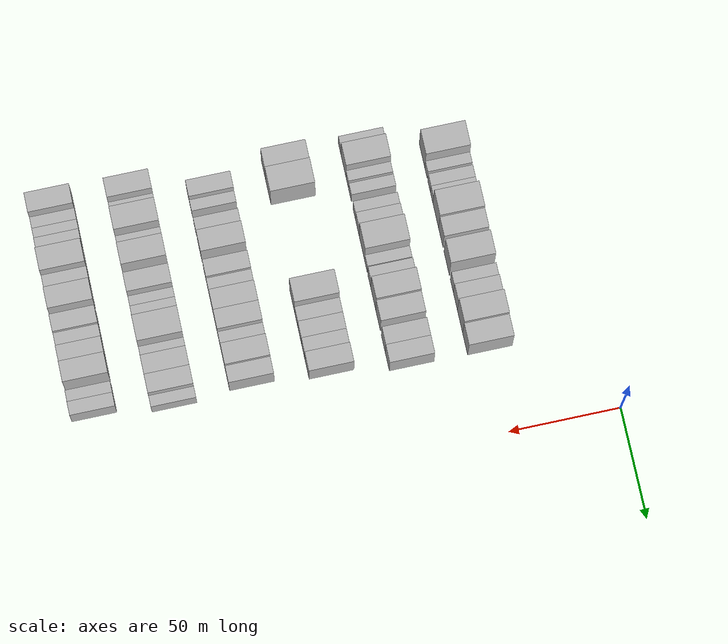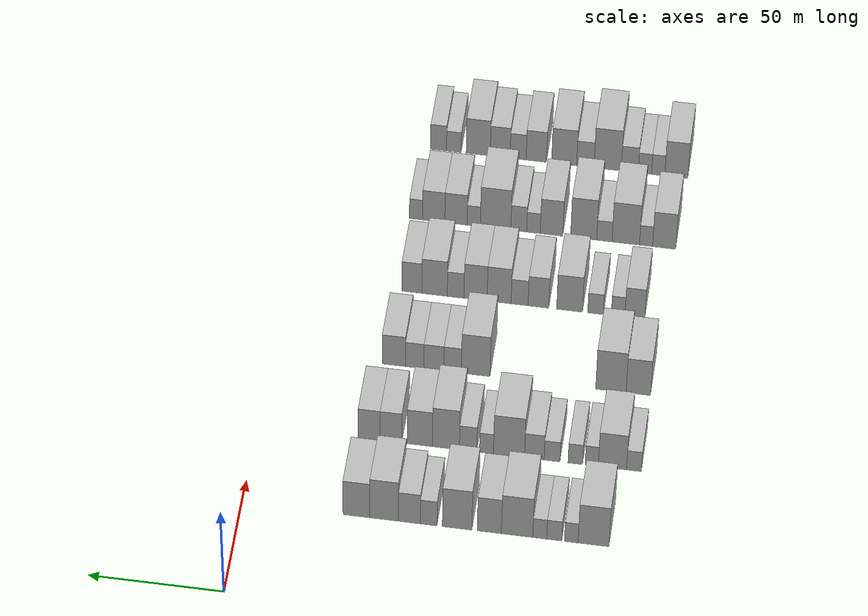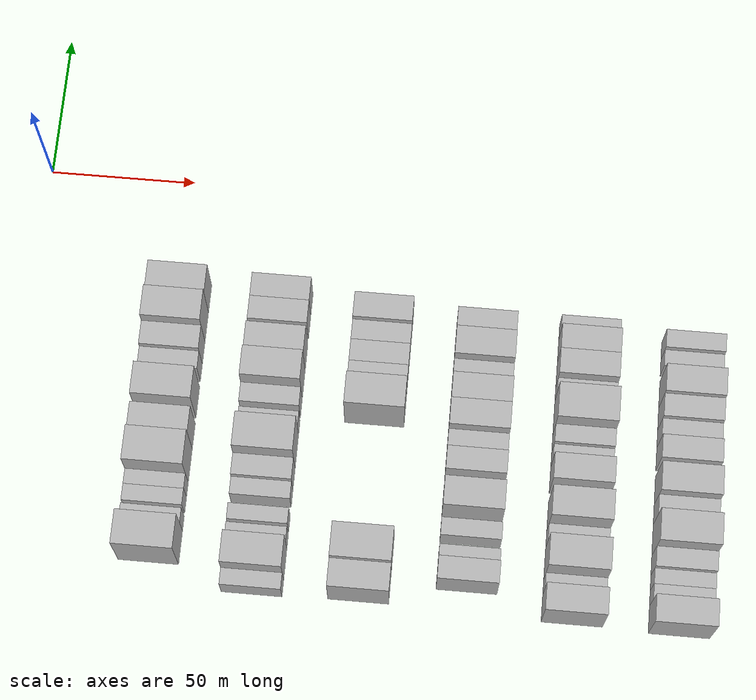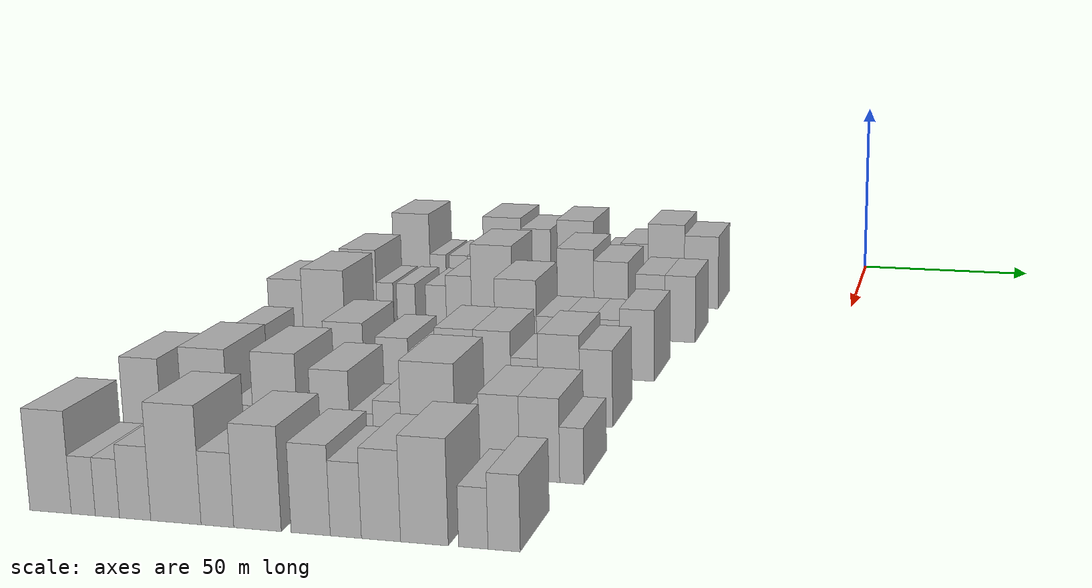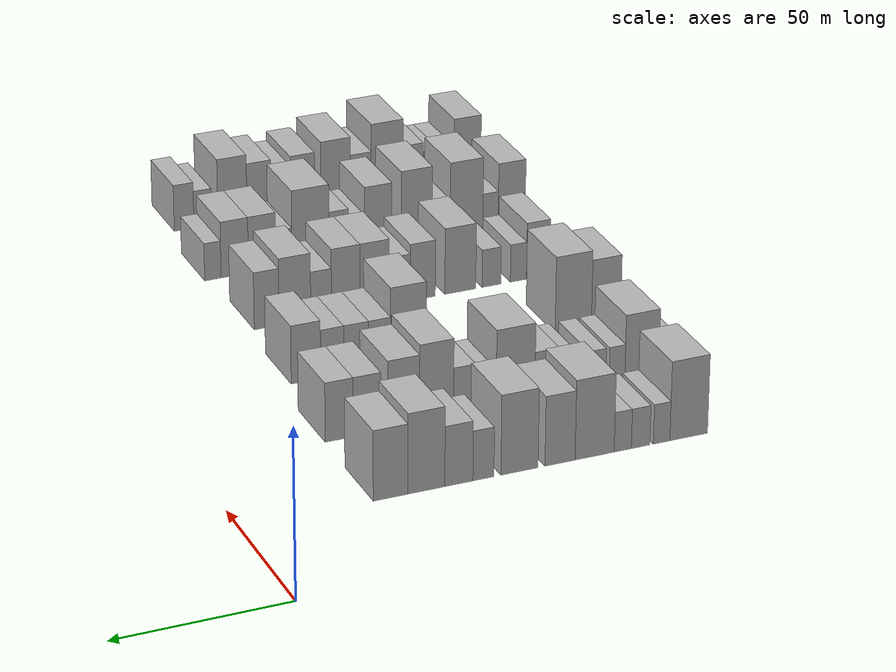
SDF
<sdf version="1.6">
 <world name="default">
  <model name="building_39">
   <static>1</static>
   <pose>50.0000 -129.4101 0 0.000000 0.000000 0.000000</pose>
   <link name="link">
    <pose>0 0 12.00 0 0 0</pose>
    <collision name="collision"><geometry><box><size>20.0000 11.3293 24.0000</size></box></geometry></collision>
    <visual name="visual">
     <cast_shadows>0</cast_shadows>
     <geometry><box><size>20.0000 11.3293 24.0000</size></box></geometry>
     <material>
      <script>
       <uri>model://HANNAS_wall/materials/scripts</uri>
       <uri>model://HANNAS_wall/materials/textures</uri>
       <name>vrc/HANNAS_wall</name>
      </script>
     </material>
    </visual>
   </link>
  </model>
  <model name="building_40">
   <static>1</static>
   <pose>50.0000 -121.2722 0 0.000000 0.000000 0.000000</pose>
   <link name="link">
    <pose>0 0 6.00 0 0 0</pose>
    <collision name="collision"><geometry><box><size>20.0000 4.9465 12.0000</size></box></geometry></collision>
    <visual name="visual">
     <cast_shadows>0</cast_shadows>
     <geometry><box><size>20.0000 4.9465 12.0000</size></box></geometry>
     <material>
      <script>
       <uri>model://HANNAS_wall/materials/scripts</uri>
       <uri>model://HANNAS_wall/materials/textures</uri>
       <name>vrc/HANNAS_wall</name>
      </script>
     </material>
    </visual>
   </link>
  </model>
  <model name="building_41">
   <static>1</static>
   <pose>50.0000 -115.0276 0 0.000000 0.000000 0.000000</pose>
   <link name="link">
    <pose>0 0 6.00 0 0 0</pose>
    <collision name="collision"><geometry><box><size>20.0000 5.5428 12.0000</size></box></geometry></collision>
    <visual name="visual">
     <cast_shadows>0</cast_shadows>
     <geometry><box><size>20.0000 5.5428 12.0000</size></box></geometry>
     <material>
      <script>
       <uri>model://HANNAS_wall/materials/scripts</uri>
       <uri>model://HANNAS_wall/materials/textures</uri>
       <name>vrc/HANNAS_wall</name>
      </script>
     </material>
    </visual>
   </link>
  </model>
  <model name="building_42">
   <static>1</static>
   <pose>50.0000 -109.7091 0 0.000000 0.000000 0.000000</pose>
   <link name="link">
    <pose>0 0 6.00 0 0 0</pose>
    <collision name="collision"><geometry><box><size>20.0000 5.0941 12.0000</size></box></geometry></collision>
    <visual name="visual">
     <cast_shadows>0</cast_shadows>
     <geometry><box><size>20.0000 5.0941 12.0000</size></box></geometry>
     <material>
      <script>
       <uri>model://HANNAS_wall/materials/scripts</uri>
       <uri>model://HANNAS_wall/materials/textures</uri>
       <name>vrc/HANNAS_wall</name>
      </script>
     </material>
    </visual>
   </link>
  </model>
  <model name="building_43">
   <static>1</static>
   <pose>50.0000 -101.3900 0 0.000000 0.000000 0.000000</pose>
   <link name="link">
    <pose>0 0 12.00 0 0 0</pose>
    <collision name="collision"><geometry><box><size>20.0000 11.5441 24.0000</size></box></geometry></collision>
    <visual name="visual">
     <cast_shadows>0</cast_shadows>
     <geometry><box><size>20.0000 11.5441 24.0000</size></box></geometry>
     <material>
      <script>
       <uri>model://HANNAS_wall/materials/scripts</uri>
       <uri>model://HANNAS_wall/materials/textures</uri>
       <name>vrc/HANNAS_wall</name>
      </script>
     </material>
    </visual>
   </link>
  </model>
  <model name="building_44">
   <static>1</static>
   <pose>50.0000 -91.1934 0 0.000000 0.000000 0.000000</pose>
   <link name="link">
    <pose>0 0 10.50 0 0 0</pose>
    <collision name="collision"><geometry><box><size>20.0000 8.8491 21.0000</size></box></geometry></collision>
    <visual name="visual">
     <cast_shadows>0</cast_shadows>
     <geometry><box><size>20.0000 8.8491 21.0000</size></box></geometry>
     <material>
      <script>
       <uri>model://HANNAS_wall/materials/scripts</uri>
       <uri>model://HANNAS_wall/materials/textures</uri>
       <name>vrc/HANNAS_wall</name>
      </script>
     </material>
    </visual>
   </link>
  </model>
  <model name="building_45">
   <static>1</static>
   <pose>50.0000 -79.3467 0 0.000000 0.000000 0.000000</pose>
   <link name="link">
    <pose>0 0 12.00 0 0 0</pose>
    <collision name="collision"><geometry><box><size>20.0000 10.8444 24.0000</size></box></geometry></collision>
    <visual name="visual">
     <cast_shadows>0</cast_shadows>
     <geometry><box><size>20.0000 10.8444 24.0000</size></box></geometry>
     <material>
      <script>
       <uri>model://HANNAS_wall/materials/scripts</uri>
       <uri>model://HANNAS_wall/materials/textures</uri>
       <name>vrc/HANNAS_wall</name>
      </script>
     </material>
    </visual>
   </link>
  </model>
  <model name="building_46">
   <static>1</static>
   <pose>50.0000 -68.8663 0 0.000000 0.000000 0.000000</pose>
   <link name="link">
    <pose>0 0 7.50 0 0 0</pose>
    <collision name="collision"><geometry><box><size>20.0000 6.1165 15.0000</size></box></geometry></collision>
    <visual name="visual">
     <cast_shadows>0</cast_shadows>
     <geometry><box><size>20.0000 6.1165 15.0000</size></box></geometry>
     <material>
      <script>
       <uri>model://HANNAS_wall/materials/scripts</uri>
       <uri>model://HANNAS_wall/materials/textures</uri>
       <name>vrc/HANNAS_wall</name>
      </script>
     </material>
    </visual>
   </link>
  </model>
  <model name="building_47">
   <static>1</static>
   <pose>50.0000 -61.7780 0 0.000000 0.000000 0.000000</pose>
   <link name="link">
    <pose>0 0 9.00 0 0 0</pose>
    <collision name="collision"><geometry><box><size>20.0000 8.0601 18.0000</size></box></geometry></collision>
    <visual name="visual">
     <cast_shadows>0</cast_shadows>
     <geometry><box><size>20.0000 8.0601 18.0000</size></box></geometry>
     <material>
      <script>
       <uri>model://HANNAS_wall/materials/scripts</uri>
       <uri>model://HANNAS_wall/materials/textures</uri>
       <name>vrc/HANNAS_wall</name>
      </script>
     </material>
    </visual>
   </link>
  </model>
  <model name="building_48">
   <static>1</static>
   <pose>50.0000 -52.4674 0 0.000000 0.000000 0.000000</pose>
   <link name="link">
    <pose>0 0 12.00 0 0 0</pose>
    <collision name="collision"><geometry><box><size>20.0000 10.5612 24.0000</size></box></geometry></collision>
    <visual name="visual">
     <cast_shadows>0</cast_shadows>
     <geometry><box><size>20.0000 10.5612 24.0000</size></box></geometry>
     <material>
      <script>
       <uri>model://HANNAS_wall/materials/scripts</uri>
       <uri>model://HANNAS_wall/materials/textures</uri>
       <name>vrc/HANNAS_wall</name>
      </script>
     </material>
    </visual>
   </link>
  </model>
  <model name="building_49">
   <static>1</static>
   <pose>50.0000 -42.2517 0 0.000000 0.000000 0.000000</pose>
   <link name="link">
    <pose>0 0 10.50 0 0 0</pose>
    <collision name="collision"><geometry><box><size>20.0000 9.8702 21.0000</size></box></geometry></collision>
    <visual name="visual">
     <cast_shadows>0</cast_shadows>
     <geometry><box><size>20.0000 9.8702 21.0000</size></box></geometry>
     <material>
      <script>
       <uri>model://HANNAS_wall/materials/scripts</uri>
       <uri>model://HANNAS_wall/materials/textures</uri>
       <name>vrc/HANNAS_wall</name>
      </script>
     </material>
    </visual>
   </link>
  </model>
  <model name="building_162">
   <static>1</static>
   <pose>85.0000 -140.1025 0 0.000000 0.000000 0.000000</pose>
   <link name="link">
    <pose>0 0 6.00 0 0 0</pose>
    <collision name="collision"><geometry><box><size>20.0000 5.4848 12.0000</size></box></geometry></collision>
    <visual name="visual">
     <cast_shadows>0</cast_shadows>
     <geometry><box><size>20.0000 5.4848 12.0000</size></box></geometry>
     <material>
      <script>
       <uri>model://HANNAS_wall/materials/scripts</uri>
       <uri>model://HANNAS_wall/materials/textures</uri>
       <name>vrc/HANNAS_wall</name>
      </script>
     </material>
    </visual>
   </link>
  </model>
  <model name="building_163">
   <static>1</static>
   <pose>85.0000 -132.1316 0 0.000000 0.000000 0.000000</pose>
   <link name="link">
    <pose>0 0 10.50 0 0 0</pose>
    <collision name="collision"><geometry><box><size>20.0000 10.4571 21.0000</size></box></geometry></collision>
    <visual name="visual">
     <cast_shadows>0</cast_shadows>
     <geometry><box><size>20.0000 10.4571 21.0000</size></box></geometry>
     <material>
      <script>
       <uri>model://HANNAS_wall/materials/scripts</uri>
       <uri>model://HANNAS_wall/materials/textures</uri>
       <name>vrc/HANNAS_wall</name>
      </script>
     </material>
    </visual>
   </link>
  </model>
  <model name="building_164">
   <static>1</static>
   <pose>85.0000 -124.4841 0 0.000000 0.000000 0.000000</pose>
   <link name="link">
    <pose>0 0 6.00 0 0 0</pose>
    <collision name="collision"><geometry><box><size>20.0000 4.8378 12.0000</size></box></geometry></collision>
    <visual name="visual">
     <cast_shadows>0</cast_shadows>
     <geometry><box><size>20.0000 4.8378 12.0000</size></box></geometry>
     <material>
      <script>
       <uri>model://HANNAS_wall/materials/scripts</uri>
       <uri>model://HANNAS_wall/materials/textures</uri>
       <name>vrc/HANNAS_wall</name>
      </script>
     </material>
    </visual>
   </link>
  </model>
  <model name="building_165">
   <static>1</static>
   <pose>85.0000 -118.3863 0 0.000000 0.000000 0.000000</pose>
   <link name="link">
    <pose>0 0 6.00 0 0 0</pose>
    <collision name="collision"><geometry><box><size>20.0000 5.3579 12.0000</size></box></geometry></collision>
    <visual name="visual">
     <cast_shadows>0</cast_shadows>
     <geometry><box><size>20.0000 5.3579 12.0000</size></box></geometry>
     <material>
      <script>
       <uri>model://HANNAS_wall/materials/scripts</uri>
       <uri>model://HANNAS_wall/materials/textures</uri>
       <name>vrc/HANNAS_wall</name>
      </script>
     </material>
    </visual>
   </link>
  </model>
  <model name="building_166">
   <static>1</static>
   <pose>85.0000 -109.7825 0 0.000000 0.000000 0.000000</pose>
   <link name="link">
    <pose>0 0 6.00 0 0 0</pose>
    <collision name="collision"><geometry><box><size>20.0000 5.8497 12.0000</size></box></geometry></collision>
    <visual name="visual">
     <cast_shadows>0</cast_shadows>
     <geometry><box><size>20.0000 5.8497 12.0000</size></box></geometry>
     <material>
      <script>
       <uri>model://HANNAS_wall/materials/scripts</uri>
       <uri>model://HANNAS_wall/materials/textures</uri>
       <name>vrc/HANNAS_wall</name>
      </script>
     </material>
    </visual>
   </link>
  </model>
  <model name="building_167">
   <static>1</static>
   <pose>85.0000 -103.2186 0 0.000000 0.000000 0.000000</pose>
   <link name="link">
    <pose>0 0 7.50 0 0 0</pose>
    <collision name="collision"><geometry><box><size>20.0000 7.2781 15.0000</size></box></geometry></collision>
    <visual name="visual">
     <cast_shadows>0</cast_shadows>
     <geometry><box><size>20.0000 7.2781 15.0000</size></box></geometry>
     <material>
      <script>
       <uri>model://HANNAS_wall/materials/scripts</uri>
       <uri>model://HANNAS_wall/materials/textures</uri>
       <name>vrc/HANNAS_wall</name>
      </script>
     </material>
    </visual>
   </link>
  </model>
  <model name="building_168">
   <static>1</static>
   <pose>85.0000 -93.7803 0 0.000000 0.000000 0.000000</pose>
   <link name="link">
    <pose>0 0 12.00 0 0 0</pose>
    <collision name="collision"><geometry><box><size>20.0000 11.5986 24.0000</size></box></geometry></collision>
    <visual name="visual">
     <cast_shadows>0</cast_shadows>
     <geometry><box><size>20.0000 11.5986 24.0000</size></box></geometry>
     <material>
      <script>
       <uri>model://HANNAS_wall/materials/scripts</uri>
       <uri>model://HANNAS_wall/materials/textures</uri>
       <name>vrc/HANNAS_wall</name>
      </script>
     </material>
    </visual>
   </link>
  </model>
  <model name="building_169">
   <static>1</static>
   <pose>85.0000 -85.3984 0 0.000000 0.000000 0.000000</pose>
   <link name="link">
    <pose>0 0 6.00 0 0 0</pose>
    <collision name="collision"><geometry><box><size>20.0000 5.1652 12.0000</size></box></geometry></collision>
    <visual name="visual">
     <cast_shadows>0</cast_shadows>
     <geometry><box><size>20.0000 5.1652 12.0000</size></box></geometry>
     <material>
      <script>
       <uri>model://HANNAS_wall/materials/scripts</uri>
       <uri>model://HANNAS_wall/materials/textures</uri>
       <name>vrc/HANNAS_wall</name>
      </script>
     </material>
    </visual>
   </link>
  </model>
  <model name="building_170">
   <static>1</static>
   <pose>85.0000 -78.5708 0 0.000000 0.000000 0.000000</pose>
   <link name="link">
    <pose>0 0 7.50 0 0 0</pose>
    <collision name="collision"><geometry><box><size>20.0000 6.4899 15.0000</size></box></geometry></collision>
    <visual name="visual">
     <cast_shadows>0</cast_shadows>
     <geometry><box><size>20.0000 6.4899 15.0000</size></box></geometry>
     <material>
      <script>
       <uri>model://HANNAS_wall/materials/scripts</uri>
       <uri>model://HANNAS_wall/materials/textures</uri>
       <name>vrc/HANNAS_wall</name>
      </script>
     </material>
    </visual>
   </link>
  </model>
  <model name="building_171">
   <static>1</static>
   <pose>85.0000 -70.2937 0 0.000000 0.000000 0.000000</pose>
   <link name="link">
    <pose>0 0 12.00 0 0 0</pose>
    <collision name="collision"><geometry><box><size>20.0000 10.0643 24.0000</size></box></geometry></collision>
    <visual name="visual">
     <cast_shadows>0</cast_shadows>
     <geometry><box><size>20.0000 10.0643 24.0000</size></box></geometry>
     <material>
      <script>
       <uri>model://HANNAS_wall/materials/scripts</uri>
       <uri>model://HANNAS_wall/materials/textures</uri>
       <name>vrc/HANNAS_wall</name>
      </script>
     </material>
    </visual>
   </link>
  </model>
  <model name="building_172">
   <static>1</static>
   <pose>85.0000 -60.5582 0 0.000000 0.000000 0.000000</pose>
   <link name="link">
    <pose>0 0 10.50 0 0 0</pose>
    <collision name="collision"><geometry><box><size>20.0000 9.4066 21.0000</size></box></geometry></collision>
    <visual name="visual">
     <cast_shadows>0</cast_shadows>
     <geometry><box><size>20.0000 9.4066 21.0000</size></box></geometry>
     <material>
      <script>
       <uri>model://HANNAS_wall/materials/scripts</uri>
       <uri>model://HANNAS_wall/materials/textures</uri>
       <name>vrc/HANNAS_wall</name>
      </script>
     </material>
    </visual>
   </link>
  </model>
  <model name="building_173">
   <static>1</static>
   <pose>85.0000 -49.8305 0 0.000000 0.000000 0.000000</pose>
   <link name="link">
    <pose>0 0 9.00 0 0 0</pose>
    <collision name="collision"><geometry><box><size>20.0000 8.0489 18.0000</size></box></geometry></collision>
    <visual name="visual">
     <cast_shadows>0</cast_shadows>
     <geometry><box><size>20.0000 8.0489 18.0000</size></box></geometry>
     <material>
      <script>
       <uri>model://HANNAS_wall/materials/scripts</uri>
       <uri>model://HANNAS_wall/materials/textures</uri>
       <name>vrc/HANNAS_wall</name>
      </script>
     </material>
    </visual>
   </link>
  </model>
  <model name="building_174">
   <static>1</static>
   <pose>85.0000 -41.7130 0 0.000000 0.000000 0.000000</pose>
   <link name="link">
    <pose>0 0 9.00 0 0 0</pose>
    <collision name="collision"><geometry><box><size>20.0000 8.1860 18.0000</size></box></geometry></collision>
    <visual name="visual">
     <cast_shadows>0</cast_shadows>
     <geometry><box><size>20.0000 8.1860 18.0000</size></box></geometry>
     <material>
      <script>
       <uri>model://HANNAS_wall/materials/scripts</uri>
       <uri>model://HANNAS_wall/materials/textures</uri>
       <name>vrc/HANNAS_wall</name>
      </script>
     </material>
    </visual>
   </link>
  </model>
  <model name="building_291">
   <static>1</static>
   <pose>120.0000 -137.6559 0 0.000000 0.000000 0.000000</pose>
   <link name="link">
    <pose>0 0 10.50 0 0 0</pose>
    <collision name="collision"><geometry><box><size>20.0000 9.1968 21.0000</size></box></geometry></collision>
    <visual name="visual">
     <cast_shadows>0</cast_shadows>
     <geometry><box><size>20.0000 9.1968 21.0000</size></box></geometry>
     <material>
      <script>
       <uri>model://HANNAS_wall/materials/scripts</uri>
       <uri>model://HANNAS_wall/materials/textures</uri>
       <name>vrc/HANNAS_wall</name>
      </script>
     </material>
    </visual>
   </link>
  </model>
  <model name="building_292">
   <static>1</static>
   <pose>120.0000 -127.3863 0 0.000000 0.000000 0.000000</pose>
   <link name="link">
    <pose>0 0 12.00 0 0 0</pose>
    <collision name="collision"><geometry><box><size>20.0000 11.3425 24.0000</size></box></geometry></collision>
    <visual name="visual">
     <cast_shadows>0</cast_shadows>
     <geometry><box><size>20.0000 11.3425 24.0000</size></box></geometry>
     <material>
      <script>
       <uri>model://HANNAS_wall/materials/scripts</uri>
       <uri>model://HANNAS_wall/materials/textures</uri>
       <name>vrc/HANNAS_wall</name>
      </script>
     </material>
    </visual>
   </link>
  </model>
  <model name="building_293">
   <static>1</static>
   <pose>120.0000 -76.6047 0 0.000000 0.000000 0.000000</pose>
   <link name="link">
    <pose>0 0 12.00 0 0 0</pose>
    <collision name="collision"><geometry><box><size>20.0000 10.7402 24.0000</size></box></geometry></collision>
    <visual name="visual">
     <cast_shadows>0</cast_shadows>
     <geometry><box><size>20.0000 10.7402 24.0000</size></box></geometry>
     <material>
      <script>
       <uri>model://HANNAS_wall/materials/scripts</uri>
       <uri>model://HANNAS_wall/materials/textures</uri>
       <name>vrc/HANNAS_wall</name>
      </script>
     </material>
    </visual>
   </link>
  </model>
  <model name="building_294">
   <static>1</static>
   <pose>120.0000 -67.9153 0 0.000000 0.000000 0.000000</pose>
   <link name="link">
    <pose>0 0 7.50 0 0 0</pose>
    <collision name="collision"><geometry><box><size>20.0000 6.6384 15.0000</size></box></geometry></collision>
    <visual name="visual">
     <cast_shadows>0</cast_shadows>
     <geometry><box><size>20.0000 6.6384 15.0000</size></box></geometry>
     <material>
      <script>
       <uri>model://HANNAS_wall/materials/scripts</uri>
       <uri>model://HANNAS_wall/materials/textures</uri>
       <name>vrc/HANNAS_wall</name>
      </script>
     </material>
    </visual>
   </link>
  </model>
  <model name="building_295">
   <static>1</static>
   <pose>120.0000 -60.8540 0 0.000000 0.000000 0.000000</pose>
   <link name="link">
    <pose>0 0 7.50 0 0 0</pose>
    <collision name="collision"><geometry><box><size>20.0000 7.4843 15.0000</size></box></geometry></collision>
    <visual name="visual">
     <cast_shadows>0</cast_shadows>
     <geometry><box><size>20.0000 7.4843 15.0000</size></box></geometry>
     <material>
      <script>
       <uri>model://HANNAS_wall/materials/scripts</uri>
       <uri>model://HANNAS_wall/materials/textures</uri>
       <name>vrc/HANNAS_wall</name>
      </script>
     </material>
    </visual>
   </link>
  </model>
  <model name="building_296">
   <static>1</static>
   <pose>120.0000 -53.6353 0 0.000000 0.000000 0.000000</pose>
   <link name="link">
    <pose>0 0 7.50 0 0 0</pose>
    <collision name="collision"><geometry><box><size>20.0000 6.9530 15.0000</size></box></geometry></collision>
    <visual name="visual">
     <cast_shadows>0</cast_shadows>
     <geometry><box><size>20.0000 6.9530 15.0000</size></box></geometry>
     <material>
      <script>
       <uri>model://HANNAS_wall/materials/scripts</uri>
       <uri>model://HANNAS_wall/materials/textures</uri>
       <name>vrc/HANNAS_wall</name>
      </script>
     </material>
    </visual>
   </link>
  </model>
  <model name="building_297">
   <static>1</static>
   <pose>120.0000 -45.7761 0 0.000000 0.000000 0.000000</pose>
   <link name="link">
    <pose>0 0 9.00 0 0 0</pose>
    <collision name="collision"><geometry><box><size>20.0000 8.7654 18.0000</size></box></geometry></collision>
    <visual name="visual">
     <cast_shadows>0</cast_shadows>
     <geometry><box><size>20.0000 8.7654 18.0000</size></box></geometry>
     <material>
      <script>
       <uri>model://HANNAS_wall/materials/scripts</uri>
       <uri>model://HANNAS_wall/materials/textures</uri>
       <name>vrc/HANNAS_wall</name>
      </script>
     </material>
    </visual>
   </link>
  </model>
  <model name="building_411">
   <static>1</static>
   <pose>155.0000 -132.2666 0 0.000000 0.000000 0.000000</pose>
   <link name="link">
    <pose>0 0 9.00 0 0 0</pose>
    <collision name="collision"><geometry><box><size>20.0000 7.5191 18.0000</size></box></geometry></collision>
    <visual name="visual">
     <cast_shadows>0</cast_shadows>
     <geometry><box><size>20.0000 7.5191 18.0000</size></box></geometry>
     <material>
      <script>
       <uri>model://HANNAS_wall/materials/scripts</uri>
       <uri>model://HANNAS_wall/materials/textures</uri>
       <name>vrc/HANNAS_wall</name>
      </script>
     </material>
    </visual>
   </link>
  </model>
  <model name="building_412">
   <static>1</static>
   <pose>155.0000 -125.9304 0 0.000000 0.000000 0.000000</pose>
   <link name="link">
    <pose>0 0 6.00 0 0 0</pose>
    <collision name="collision"><geometry><box><size>20.0000 5.1533 12.0000</size></box></geometry></collision>
    <visual name="visual">
     <cast_shadows>0</cast_shadows>
     <geometry><box><size>20.0000 5.1533 12.0000</size></box></geometry>
     <material>
      <script>
       <uri>model://HANNAS_wall/materials/scripts</uri>
       <uri>model://HANNAS_wall/materials/textures</uri>
       <name>vrc/HANNAS_wall</name>
      </script>
     </material>
    </visual>
   </link>
  </model>
  <model name="building_413">
   <static>1</static>
   <pose>155.0000 -117.3875 0 0.000000 0.000000 0.000000</pose>
   <link name="link">
    <pose>0 0 6.00 0 0 0</pose>
    <collision name="collision"><geometry><box><size>20.0000 5.9325 12.0000</size></box></geometry></collision>
    <visual name="visual">
     <cast_shadows>0</cast_shadows>
     <geometry><box><size>20.0000 5.9325 12.0000</size></box></geometry>
     <material>
      <script>
       <uri>model://HANNAS_wall/materials/scripts</uri>
       <uri>model://HANNAS_wall/materials/textures</uri>
       <name>vrc/HANNAS_wall</name>
      </script>
     </material>
    </visual>
   </link>
  </model>
  <model name="building_414">
   <static>1</static>
   <pose>155.0000 -107.5310 0 0.000000 0.000000 0.000000</pose>
   <link name="link">
    <pose>0 0 10.50 0 0 0</pose>
    <collision name="collision"><geometry><box><size>20.0000 9.7805 21.0000</size></box></geometry></collision>
    <visual name="visual">
     <cast_shadows>0</cast_shadows>
     <geometry><box><size>20.0000 9.7805 21.0000</size></box></geometry>
     <material>
      <script>
       <uri>model://HANNAS_wall/materials/scripts</uri>
       <uri>model://HANNAS_wall/materials/textures</uri>
       <name>vrc/HANNAS_wall</name>
      </script>
     </material>
    </visual>
   </link>
  </model>
  <model name="building_415">
   <static>1</static>
   <pose>155.0000 -95.7121 0 0.000000 0.000000 0.000000</pose>
   <link name="link">
    <pose>0 0 9.00 0 0 0</pose>
    <collision name="collision"><geometry><box><size>20.0000 7.8575 18.0000</size></box></geometry></collision>
    <visual name="visual">
     <cast_shadows>0</cast_shadows>
     <geometry><box><size>20.0000 7.8575 18.0000</size></box></geometry>
     <material>
      <script>
       <uri>model://HANNAS_wall/materials/scripts</uri>
       <uri>model://HANNAS_wall/materials/textures</uri>
       <name>vrc/HANNAS_wall</name>
      </script>
     </material>
    </visual>
   </link>
  </model>
  <model name="building_416">
   <static>1</static>
   <pose>155.0000 -88.5434 0 0.000000 0.000000 0.000000</pose>
   <link name="link">
    <pose>0 0 7.50 0 0 0</pose>
    <collision name="collision"><geometry><box><size>20.0000 6.4799 15.0000</size></box></geometry></collision>
    <visual name="visual">
     <cast_shadows>0</cast_shadows>
     <geometry><box><size>20.0000 6.4799 15.0000</size></box></geometry>
     <material>
      <script>
       <uri>model://HANNAS_wall/materials/scripts</uri>
       <uri>model://HANNAS_wall/materials/textures</uri>
       <name>vrc/HANNAS_wall</name>
      </script>
     </material>
    </visual>
   </link>
  </model>
  <model name="building_417">
   <static>1</static>
   <pose>155.0000 -80.7467 0 0.000000 0.000000 0.000000</pose>
   <link name="link">
    <pose>0 0 10.50 0 0 0</pose>
    <collision name="collision"><geometry><box><size>20.0000 9.1133 21.0000</size></box></geometry></collision>
    <visual name="visual">
     <cast_shadows>0</cast_shadows>
     <geometry><box><size>20.0000 9.1133 21.0000</size></box></geometry>
     <material>
      <script>
       <uri>model://HANNAS_wall/materials/scripts</uri>
       <uri>model://HANNAS_wall/materials/textures</uri>
       <name>vrc/HANNAS_wall</name>
      </script>
     </material>
    </visual>
   </link>
  </model>
  <model name="building_418">
   <static>1</static>
   <pose>155.0000 -71.7793 0 0.000000 0.000000 0.000000</pose>
   <link name="link">
    <pose>0 0 10.50 0 0 0</pose>
    <collision name="collision"><geometry><box><size>20.0000 8.8216 21.0000</size></box></geometry></collision>
    <visual name="visual">
     <cast_shadows>0</cast_shadows>
     <geometry><box><size>20.0000 8.8216 21.0000</size></box></geometry>
     <material>
      <script>
       <uri>model://HANNAS_wall/materials/scripts</uri>
       <uri>model://HANNAS_wall/materials/textures</uri>
       <name>vrc/HANNAS_wall</name>
      </script>
     </material>
    </visual>
   </link>
  </model>
  <model name="building_419">
   <static>1</static>
   <pose>155.0000 -64.1817 0 0.000000 0.000000 0.000000</pose>
   <link name="link">
    <pose>0 0 7.50 0 0 0</pose>
    <collision name="collision"><geometry><box><size>20.0000 6.3736 15.0000</size></box></geometry></collision>
    <visual name="visual">
     <cast_shadows>0</cast_shadows>
     <geometry><box><size>20.0000 6.3736 15.0000</size></box></geometry>
     <material>
      <script>
       <uri>model://HANNAS_wall/materials/scripts</uri>
       <uri>model://HANNAS_wall/materials/textures</uri>
       <name>vrc/HANNAS_wall</name>
      </script>
     </material>
    </visual>
   </link>
  </model>
  <model name="building_420">
   <static>1</static>
   <pose>155.0000 -56.1588 0 0.000000 0.000000 0.000000</pose>
   <link name="link">
    <pose>0 0 10.50 0 0 0</pose>
    <collision name="collision"><geometry><box><size>20.0000 9.6722 21.0000</size></box></geometry></collision>
    <visual name="visual">
     <cast_shadows>0</cast_shadows>
     <geometry><box><size>20.0000 9.6722 21.0000</size></box></geometry>
     <material>
      <script>
       <uri>model://HANNAS_wall/materials/scripts</uri>
       <uri>model://HANNAS_wall/materials/textures</uri>
       <name>vrc/HANNAS_wall</name>
      </script>
     </material>
    </visual>
   </link>
  </model>
  <model name="building_421">
   <static>1</static>
   <pose>155.0000 -47.5231 0 0.000000 0.000000 0.000000</pose>
   <link name="link">
    <pose>0 0 9.00 0 0 0</pose>
    <collision name="collision"><geometry><box><size>20.0000 7.5994 18.0000</size></box></geometry></collision>
    <visual name="visual">
     <cast_shadows>0</cast_shadows>
     <geometry><box><size>20.0000 7.5994 18.0000</size></box></geometry>
     <material>
      <script>
       <uri>model://HANNAS_wall/materials/scripts</uri>
       <uri>model://HANNAS_wall/materials/textures</uri>
       <name>vrc/HANNAS_wall</name>
      </script>
     </material>
    </visual>
   </link>
  </model>
  <model name="building_533">
   <static>1</static>
   <pose>190.0000 -139.3846 0 0.000000 0.000000 0.000000</pose>
   <link name="link">
    <pose>0 0 10.50 0 0 0</pose>
    <collision name="collision"><geometry><box><size>20.0000 8.8592 21.0000</size></box></geometry></collision>
    <visual name="visual">
     <cast_shadows>0</cast_shadows>
     <geometry><box><size>20.0000 8.8592 21.0000</size></box></geometry>
     <material>
      <script>
       <uri>model://HANNAS_wall/materials/scripts</uri>
       <uri>model://HANNAS_wall/materials/textures</uri>
       <name>vrc/HANNAS_wall</name>
      </script>
     </material>
    </visual>
   </link>
  </model>
  <model name="building_534">
   <static>1</static>
   <pose>190.0000 -132.4509 0 0.000000 0.000000 0.000000</pose>
   <link name="link">
    <pose>0 0 6.00 0 0 0</pose>
    <collision name="collision"><geometry><box><size>20.0000 5.0083 12.0000</size></box></geometry></collision>
    <visual name="visual">
     <cast_shadows>0</cast_shadows>
     <geometry><box><size>20.0000 5.0083 12.0000</size></box></geometry>
     <material>
      <script>
       <uri>model://HANNAS_wall/materials/scripts</uri>
       <uri>model://HANNAS_wall/materials/textures</uri>
       <name>vrc/HANNAS_wall</name>
      </script>
     </material>
    </visual>
   </link>
  </model>
  <model name="building_535">
   <static>1</static>
   <pose>190.0000 -124.6827 0 0.000000 0.000000 0.000000</pose>
   <link name="link">
    <pose>0 0 12.00 0 0 0</pose>
    <collision name="collision"><geometry><box><size>20.0000 10.5280 24.0000</size></box></geometry></collision>
    <visual name="visual">
     <cast_shadows>0</cast_shadows>
     <geometry><box><size>20.0000 10.5280 24.0000</size></box></geometry>
     <material>
      <script>
       <uri>model://HANNAS_wall/materials/scripts</uri>
       <uri>model://HANNAS_wall/materials/textures</uri>
       <name>vrc/HANNAS_wall</name>
      </script>
     </material>
    </visual>
   </link>
  </model>
  <model name="building_536">
   <static>1</static>
   <pose>190.0000 -116.4871 0 0.000000 0.000000 0.000000</pose>
   <link name="link">
    <pose>0 0 6.00 0 0 0</pose>
    <collision name="collision"><geometry><box><size>20.0000 5.8632 12.0000</size></box></geometry></collision>
    <visual name="visual">
     <cast_shadows>0</cast_shadows>
     <geometry><box><size>20.0000 5.8632 12.0000</size></box></geometry>
     <material>
      <script>
       <uri>model://HANNAS_wall/materials/scripts</uri>
       <uri>model://HANNAS_wall/materials/textures</uri>
       <name>vrc/HANNAS_wall</name>
      </script>
     </material>
    </visual>
   </link>
  </model>
  <model name="building_537">
   <static>1</static>
   <pose>190.0000 -108.5542 0 0.000000 0.000000 0.000000</pose>
   <link name="link">
    <pose>0 0 12.00 0 0 0</pose>
    <collision name="collision"><geometry><box><size>20.0000 10.0025 24.0000</size></box></geometry></collision>
    <visual name="visual">
     <cast_shadows>0</cast_shadows>
     <geometry><box><size>20.0000 10.0025 24.0000</size></box></geometry>
     <material>
      <script>
       <uri>model://HANNAS_wall/materials/scripts</uri>
       <uri>model://HANNAS_wall/materials/textures</uri>
       <name>vrc/HANNAS_wall</name>
      </script>
     </material>
    </visual>
   </link>
  </model>
  <model name="building_538">
   <static>1</static>
   <pose>190.0000 -96.2152 0 0.000000 0.000000 0.000000</pose>
   <link name="link">
    <pose>0 0 10.50 0 0 0</pose>
    <collision name="collision"><geometry><box><size>20.0000 8.6756 21.0000</size></box></geometry></collision>
    <visual name="visual">
     <cast_shadows>0</cast_shadows>
     <geometry><box><size>20.0000 8.6756 21.0000</size></box></geometry>
     <material>
      <script>
       <uri>model://HANNAS_wall/materials/scripts</uri>
       <uri>model://HANNAS_wall/materials/textures</uri>
       <name>vrc/HANNAS_wall</name>
      </script>
     </material>
    </visual>
   </link>
  </model>
  <model name="building_539">
   <static>1</static>
   <pose>190.0000 -89.2864 0 0.000000 0.000000 0.000000</pose>
   <link name="link">
    <pose>0 0 6.00 0 0 0</pose>
    <collision name="collision"><geometry><box><size>20.0000 5.1819 12.0000</size></box></geometry></collision>
    <visual name="visual">
     <cast_shadows>0</cast_shadows>
     <geometry><box><size>20.0000 5.1819 12.0000</size></box></geometry>
     <material>
      <script>
       <uri>model://HANNAS_wall/materials/scripts</uri>
       <uri>model://HANNAS_wall/materials/textures</uri>
       <name>vrc/HANNAS_wall</name>
      </script>
     </material>
    </visual>
   </link>
  </model>
  <model name="building_540">
   <static>1</static>
   <pose>190.0000 -83.6494 0 0.000000 0.000000 0.000000</pose>
   <link name="link">
    <pose>0 0 7.50 0 0 0</pose>
    <collision name="collision"><geometry><box><size>20.0000 6.0921 15.0000</size></box></geometry></collision>
    <visual name="visual">
     <cast_shadows>0</cast_shadows>
     <geometry><box><size>20.0000 6.0921 15.0000</size></box></geometry>
     <material>
      <script>
       <uri>model://HANNAS_wall/materials/scripts</uri>
       <uri>model://HANNAS_wall/materials/textures</uri>
       <name>vrc/HANNAS_wall</name>
      </script>
     </material>
    </visual>
   </link>
  </model>
  <model name="building_541">
   <static>1</static>
   <pose>190.0000 -74.7293 0 0.000000 0.000000 0.000000</pose>
   <link name="link">
    <pose>0 0 12.00 0 0 0</pose>
    <collision name="collision"><geometry><box><size>20.0000 11.7479 24.0000</size></box></geometry></collision>
    <visual name="visual">
     <cast_shadows>0</cast_shadows>
     <geometry><box><size>20.0000 11.7479 24.0000</size></box></geometry>
     <material>
      <script>
       <uri>model://HANNAS_wall/materials/scripts</uri>
       <uri>model://HANNAS_wall/materials/textures</uri>
       <name>vrc/HANNAS_wall</name>
      </script>
     </material>
    </visual>
   </link>
  </model>
  <model name="building_542">
   <static>1</static>
   <pose>190.0000 -66.3143 0 0.000000 0.000000 0.000000</pose>
   <link name="link">
    <pose>0 0 6.00 0 0 0</pose>
    <collision name="collision"><geometry><box><size>20.0000 5.0822 12.0000</size></box></geometry></collision>
    <visual name="visual">
     <cast_shadows>0</cast_shadows>
     <geometry><box><size>20.0000 5.0822 12.0000</size></box></geometry>
     <material>
      <script>
       <uri>model://HANNAS_wall/materials/scripts</uri>
       <uri>model://HANNAS_wall/materials/textures</uri>
       <name>vrc/HANNAS_wall</name>
      </script>
     </material>
    </visual>
   </link>
  </model>
  <model name="building_543">
   <static>1</static>
   <pose>190.0000 -59.4727 0 0.000000 0.000000 0.000000</pose>
   <link name="link">
    <pose>0 0 9.00 0 0 0</pose>
    <collision name="collision"><geometry><box><size>20.0000 8.6010 18.0000</size></box></geometry></collision>
    <visual name="visual">
     <cast_shadows>0</cast_shadows>
     <geometry><box><size>20.0000 8.6010 18.0000</size></box></geometry>
     <material>
      <script>
       <uri>model://HANNAS_wall/materials/scripts</uri>
       <uri>model://HANNAS_wall/materials/textures</uri>
       <name>vrc/HANNAS_wall</name>
      </script>
     </material>
    </visual>
   </link>
  </model>
  <model name="building_544">
   <static>1</static>
   <pose>190.0000 -50.9063 0 0.000000 0.000000 0.000000</pose>
   <link name="link">
    <pose>0 0 9.00 0 0 0</pose>
    <collision name="collision"><geometry><box><size>20.0000 8.5318 18.0000</size></box></geometry></collision>
    <visual name="visual">
     <cast_shadows>0</cast_shadows>
     <geometry><box><size>20.0000 8.5318 18.0000</size></box></geometry>
     <material>
      <script>
       <uri>model://HANNAS_wall/materials/scripts</uri>
       <uri>model://HANNAS_wall/materials/textures</uri>
       <name>vrc/HANNAS_wall</name>
      </script>
     </material>
    </visual>
   </link>
  </model>
  <model name="building_545">
   <static>1</static>
   <pose>190.0000 -44.0970 0 0.000000 0.000000 0.000000</pose>
   <link name="link">
    <pose>0 0 6.00 0 0 0</pose>
    <collision name="collision"><geometry><box><size>20.0000 5.0868 12.0000</size></box></geometry></collision>
    <visual name="visual">
     <cast_shadows>0</cast_shadows>
     <geometry><box><size>20.0000 5.0868 12.0000</size></box></geometry>
     <material>
      <script>
       <uri>model://HANNAS_wall/materials/scripts</uri>
       <uri>model://HANNAS_wall/materials/textures</uri>
       <name>vrc/HANNAS_wall</name>
      </script>
     </material>
    </visual>
   </link>
  </model>
  <model name="building_663">
   <static>1</static>
   <pose>225.0000 -140.1249 0 0.000000 0.000000 0.000000</pose>
   <link name="link">
    <pose>0 0 10.50 0 0 0</pose>
    <collision name="collision"><geometry><box><size>20.0000 8.9171 21.0000</size></box></geometry></collision>
    <visual name="visual">
     <cast_shadows>0</cast_shadows>
     <geometry><box><size>20.0000 8.9171 21.0000</size></box></geometry>
     <material>
      <script>
       <uri>model://HANNAS_wall/materials/scripts</uri>
       <uri>model://HANNAS_wall/materials/textures</uri>
       <name>vrc/HANNAS_wall</name>
      </script>
     </material>
    </visual>
   </link>
  </model>
  <model name="building_664">
   <static>1</static>
   <pose>225.0000 -133.0942 0 0.000000 0.000000 0.000000</pose>
   <link name="link">
    <pose>0 0 6.00 0 0 0</pose>
    <collision name="collision"><geometry><box><size>20.0000 5.1443 12.0000</size></box></geometry></collision>
    <visual name="visual">
     <cast_shadows>0</cast_shadows>
     <geometry><box><size>20.0000 5.1443 12.0000</size></box></geometry>
     <material>
      <script>
       <uri>model://HANNAS_wall/materials/scripts</uri>
       <uri>model://HANNAS_wall/materials/textures</uri>
       <name>vrc/HANNAS_wall</name>
      </script>
     </material>
    </visual>
   </link>
  </model>
  <model name="building_665">
   <static>1</static>
   <pose>225.0000 -127.9555 0 0.000000 0.000000 0.000000</pose>
   <link name="link">
    <pose>0 0 6.00 0 0 0</pose>
    <collision name="collision"><geometry><box><size>20.0000 5.1332 12.0000</size></box></geometry></collision>
    <visual name="visual">
     <cast_shadows>0</cast_shadows>
     <geometry><box><size>20.0000 5.1332 12.0000</size></box></geometry>
     <material>
      <script>
       <uri>model://HANNAS_wall/materials/scripts</uri>
       <uri>model://HANNAS_wall/materials/textures</uri>
       <name>vrc/HANNAS_wall</name>
      </script>
     </material>
    </visual>
   </link>
  </model>
  <model name="building_666">
   <static>1</static>
   <pose>225.0000 -122.0860 0 0.000000 0.000000 0.000000</pose>
   <link name="link">
    <pose>0 0 7.50 0 0 0</pose>
    <collision name="collision"><geometry><box><size>20.0000 6.6057 15.0000</size></box></geometry></collision>
    <visual name="visual">
     <cast_shadows>0</cast_shadows>
     <geometry><box><size>20.0000 6.6057 15.0000</size></box></geometry>
     <material>
      <script>
       <uri>model://HANNAS_wall/materials/scripts</uri>
       <uri>model://HANNAS_wall/materials/textures</uri>
       <name>vrc/HANNAS_wall</name>
      </script>
     </material>
    </visual>
   </link>
  </model>
  <model name="building_667">
   <static>1</static>
   <pose>225.0000 -113.5287 0 0.000000 0.000000 0.000000</pose>
   <link name="link">
    <pose>0 0 12.00 0 0 0</pose>
    <collision name="collision"><geometry><box><size>20.0000 10.5087 24.0000</size></box></geometry></collision>
    <visual name="visual">
     <cast_shadows>0</cast_shadows>
     <geometry><box><size>20.0000 10.5087 24.0000</size></box></geometry>
     <material>
      <script>
       <uri>model://HANNAS_wall/materials/scripts</uri>
       <uri>model://HANNAS_wall/materials/textures</uri>
       <name>vrc/HANNAS_wall</name>
      </script>
     </material>
    </visual>
   </link>
  </model>
  <model name="building_668">
   <static>1</static>
   <pose>225.0000 -104.9023 0 0.000000 0.000000 0.000000</pose>
   <link name="link">
    <pose>0 0 7.50 0 0 0</pose>
    <collision name="collision"><geometry><box><size>20.0000 6.7442 15.0000</size></box></geometry></collision>
    <visual name="visual">
     <cast_shadows>0</cast_shadows>
     <geometry><box><size>20.0000 6.7442 15.0000</size></box></geometry>
     <material>
      <script>
       <uri>model://HANNAS_wall/materials/scripts</uri>
       <uri>model://HANNAS_wall/materials/textures</uri>
       <name>vrc/HANNAS_wall</name>
      </script>
     </material>
    </visual>
   </link>
  </model>
  <model name="building_669">
   <static>1</static>
   <pose>225.0000 -96.6788 0 0.000000 0.000000 0.000000</pose>
   <link name="link">
    <pose>0 0 10.50 0 0 0</pose>
    <collision name="collision"><geometry><box><size>20.0000 9.7028 21.0000</size></box></geometry></collision>
    <visual name="visual">
     <cast_shadows>0</cast_shadows>
     <geometry><box><size>20.0000 9.7028 21.0000</size></box></geometry>
     <material>
      <script>
       <uri>model://HANNAS_wall/materials/scripts</uri>
       <uri>model://HANNAS_wall/materials/textures</uri>
       <name>vrc/HANNAS_wall</name>
      </script>
     </material>
    </visual>
   </link>
  </model>
  <model name="building_670">
   <static>1</static>
   <pose>225.0000 -85.8841 0 0.000000 0.000000 0.000000</pose>
   <link name="link">
    <pose>0 0 9.00 0 0 0</pose>
    <collision name="collision"><geometry><box><size>20.0000 7.8865 18.0000</size></box></geometry></collision>
    <visual name="visual">
     <cast_shadows>0</cast_shadows>
     <geometry><box><size>20.0000 7.8865 18.0000</size></box></geometry>
     <material>
      <script>
       <uri>model://HANNAS_wall/materials/scripts</uri>
       <uri>model://HANNAS_wall/materials/textures</uri>
       <name>vrc/HANNAS_wall</name>
      </script>
     </material>
    </visual>
   </link>
  </model>
  <model name="building_671">
   <static>1</static>
   <pose>225.0000 -78.8325 0 0.000000 0.000000 0.000000</pose>
   <link name="link">
    <pose>0 0 7.50 0 0 0</pose>
    <collision name="collision"><geometry><box><size>20.0000 6.2168 15.0000</size></box></geometry></collision>
    <visual name="visual">
     <cast_shadows>0</cast_shadows>
     <geometry><box><size>20.0000 6.2168 15.0000</size></box></geometry>
     <material>
      <script>
       <uri>model://HANNAS_wall/materials/scripts</uri>
       <uri>model://HANNAS_wall/materials/textures</uri>
       <name>vrc/HANNAS_wall</name>
      </script>
     </material>
    </visual>
   </link>
  </model>
  <model name="building_672">
   <static>1</static>
   <pose>225.0000 -71.8452 0 0.000000 0.000000 0.000000</pose>
   <link name="link">
    <pose>0 0 9.00 0 0 0</pose>
    <collision name="collision"><geometry><box><size>20.0000 7.7578 18.0000</size></box></geometry></collision>
    <visual name="visual">
     <cast_shadows>0</cast_shadows>
     <geometry><box><size>20.0000 7.7578 18.0000</size></box></geometry>
     <material>
      <script>
       <uri>model://HANNAS_wall/materials/scripts</uri>
       <uri>model://HANNAS_wall/materials/textures</uri>
       <name>vrc/HANNAS_wall</name>
      </script>
     </material>
    </visual>
   </link>
  </model>
  <model name="building_673">
   <static>1</static>
   <pose>225.0000 -63.2914 0 0.000000 0.000000 0.000000</pose>
   <link name="link">
    <pose>0 0 10.50 0 0 0</pose>
    <collision name="collision"><geometry><box><size>20.0000 9.3498 21.0000</size></box></geometry></collision>
    <visual name="visual">
     <cast_shadows>0</cast_shadows>
     <geometry><box><size>20.0000 9.3498 21.0000</size></box></geometry>
     <material>
      <script>
       <uri>model://HANNAS_wall/materials/scripts</uri>
       <uri>model://HANNAS_wall/materials/textures</uri>
       <name>vrc/HANNAS_wall</name>
      </script>
     </material>
    </visual>
   </link>
  </model>
  <model name="building_674">
   <static>1</static>
   <pose>225.0000 -53.7784 0 0.000000 0.000000 0.000000</pose>
   <link name="link">
    <pose>0 0 6.00 0 0 0</pose>
    <collision name="collision"><geometry><box><size>20.0000 5.6762 12.0000</size></box></geometry></collision>
    <visual name="visual">
     <cast_shadows>0</cast_shadows>
     <geometry><box><size>20.0000 5.6762 12.0000</size></box></geometry>
     <material>
      <script>
       <uri>model://HANNAS_wall/materials/scripts</uri>
       <uri>model://HANNAS_wall/materials/textures</uri>
       <name>vrc/HANNAS_wall</name>
      </script>
     </material>
    </visual>
   </link>
  </model>
  <model name="building_675">
   <static>1</static>
   <pose>225.0000 -47.8374 0 0.000000 0.000000 0.000000</pose>
   <link name="link">
    <pose>0 0 7.50 0 0 0</pose>
    <collision name="collision"><geometry><box><size>20.0000 6.2057 15.0000</size></box></geometry></collision>
    <visual name="visual">
     <cast_shadows>0</cast_shadows>
     <geometry><box><size>20.0000 6.2057 15.0000</size></box></geometry>
     <material>
      <script>
       <uri>model://HANNAS_wall/materials/scripts</uri>
       <uri>model://HANNAS_wall/materials/textures</uri>
       <name>vrc/HANNAS_wall</name>
      </script>
     </material>
    </visual>
   </link>
  </model>
 </world>
</sdf>
